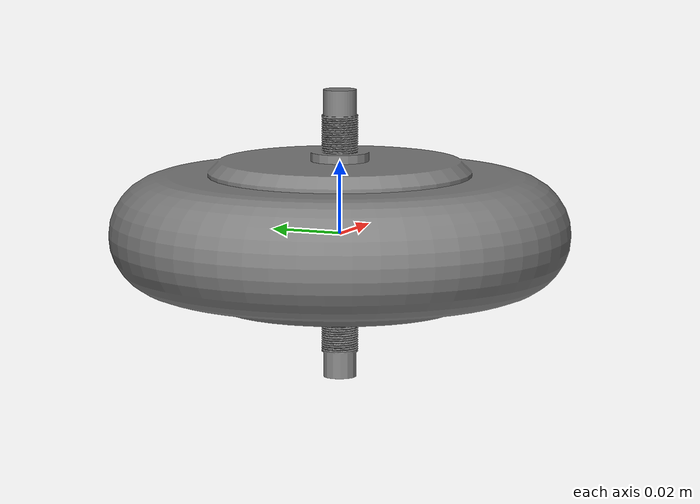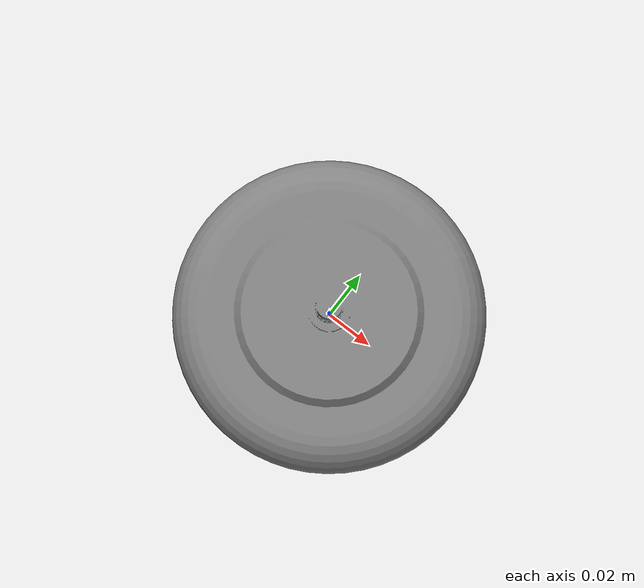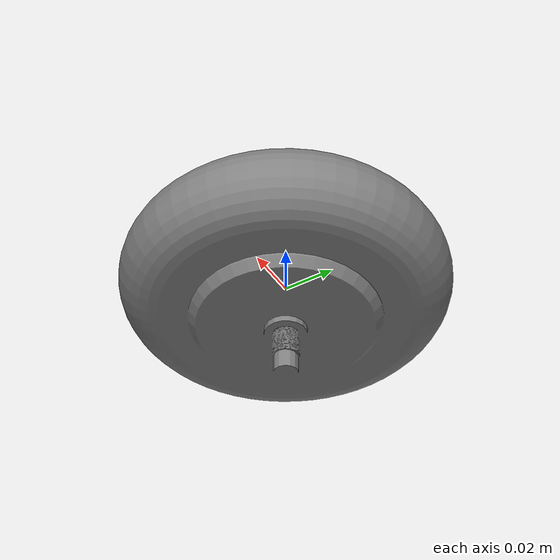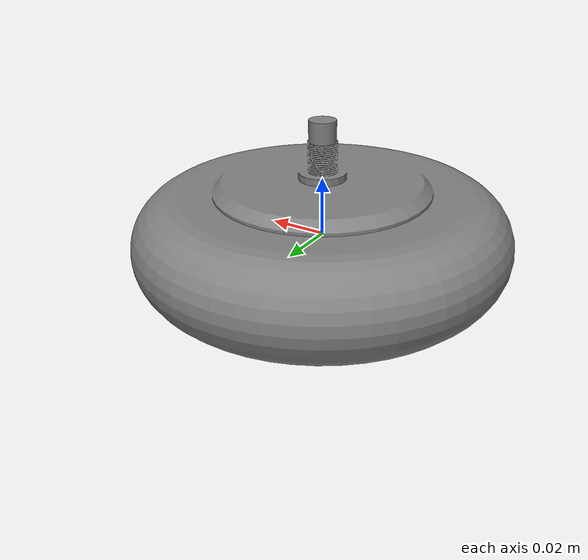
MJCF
<?xml version="1.0" encoding="UTF-8"?>
<mujoco>
<compiler meshdir="assets"/>
  <asset>
    <mesh file="t4____xiao_quan_xiang_lun_1_4.stl"/>
  </asset>

  <default>
  <default class="小全向轮1_default">
  <geom contype="0" conaffinity="0"/>
  </default>
  </default>

  <worldbody>
  <body name="小全向轮1_body" pos="0 0 0">
    <geom type="mesh" mesh="t4____xiao_quan_xiang_lun_1_4" mass="0.0001" class="小全向轮1_default"/>
  </body>
  </worldbody>
</mujoco>
